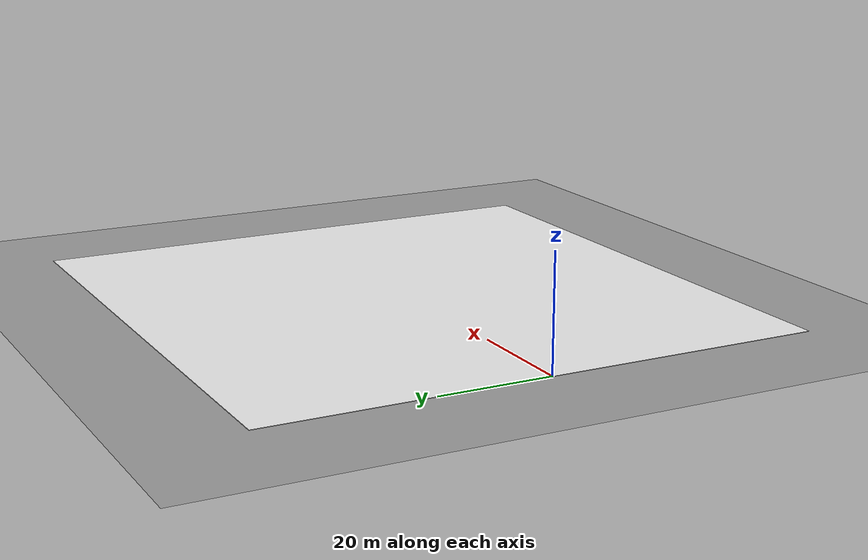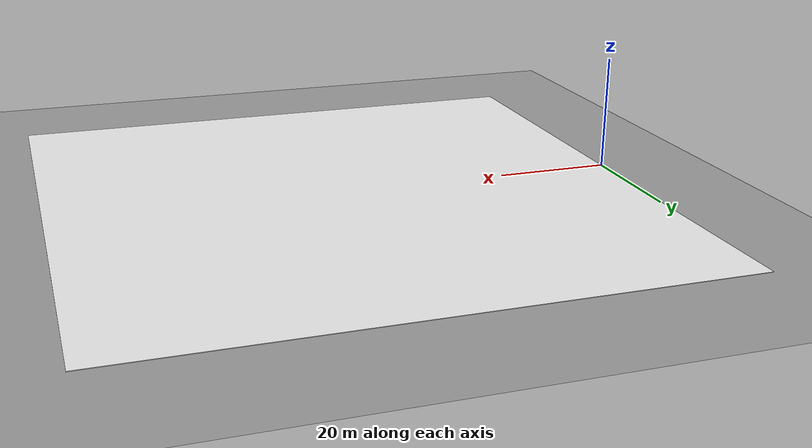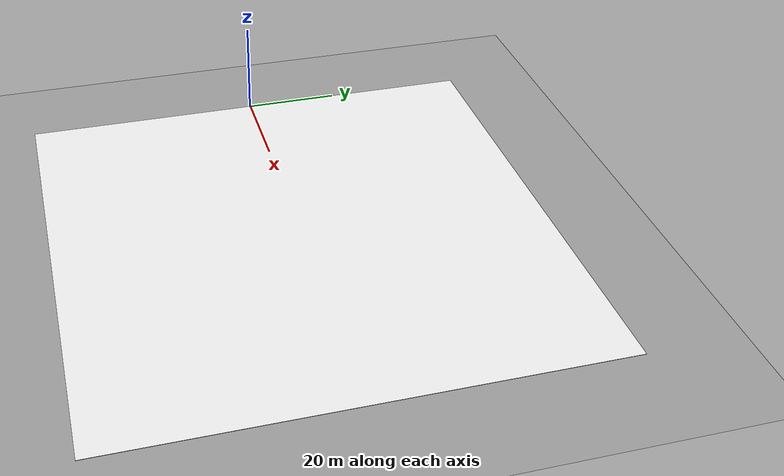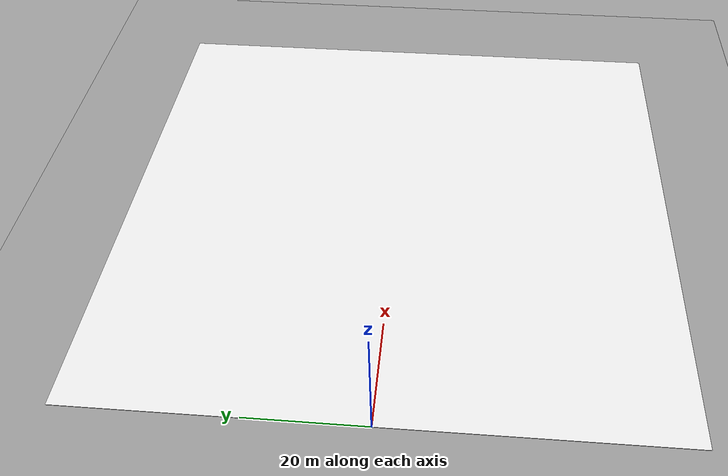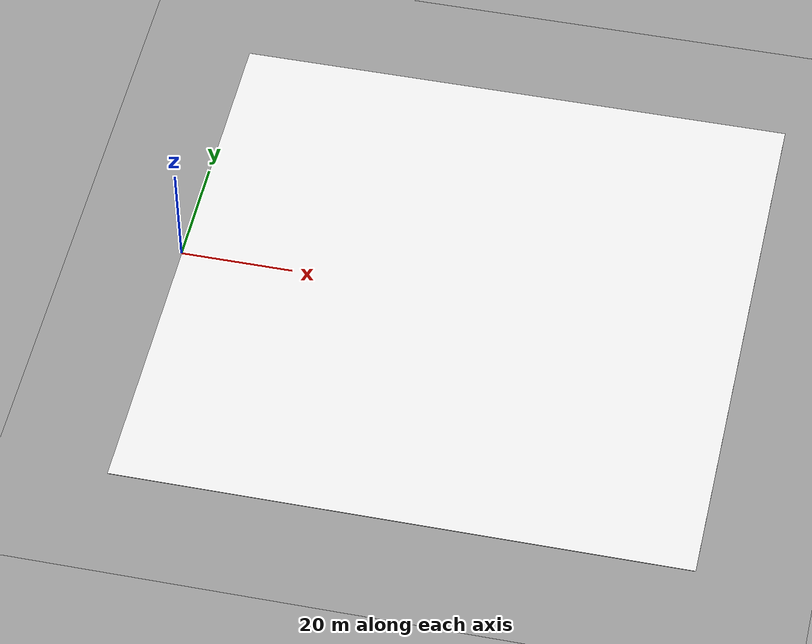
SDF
<?xml version="1.0" ?>
<sdf version="1.3">
  <model name="ground_plane_bw">
    <static>true</static>
    <link name="link">
      <collision name="bcollision">
        <pose>-50 0 0 0 0 0</pose>
        <geometry>
          <plane>
            <normal>0 0 1</normal>
            <size>100 100</size>
          </plane>
        </geometry>
        <surface>
          <friction>
            <ode>
              <mu>100</mu>
              <mu2>50</mu2>
            </ode>
          </friction>
        </surface>
      </collision>
      <visual name="bvisual">
        <pose>-50 0 0 0 0 0</pose>
        <cast_shadows>false</cast_shadows>
        <geometry>
          <plane>
            <normal>0 0 1</normal>
            <size>100 100</size>
          </plane>
        </geometry>
        <material>
          <script>
            <uri>file://media/materials/scripts/gazebo.material</uri>
            <name>Gazebo/Grey</name>
          </script>
        </material>
      </visual>
      <collision name="wcollision">
        <pose>50 0 0 0 0 0</pose>
        <geometry>
          <plane>
            <normal>0 0 1</normal>
            <size>100 100</size>
          </plane>
        </geometry>
        <surface>
          <friction>
            <ode>
              <mu>100</mu>
              <mu2>50</mu2>
            </ode>
          </friction>
        </surface>
      </collision>
      <visual name="wvisual">
        <pose>50 0 0 0 0 0</pose>
        <cast_shadows>false</cast_shadows>
        <geometry>
          <plane>
            <normal>0 0 1</normal>
            <size>100 100</size>
          </plane>
        </geometry>
        <material>
          <script>
            <uri>file://media/materials/scripts/gazebo.material</uri>
            <name>Gazebo/White</name>
          </script>
        </material>
      </visual>
    </link>
  </model>
</sdf>
